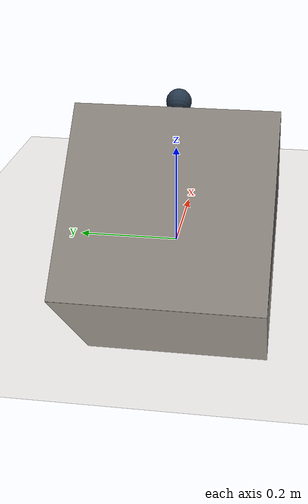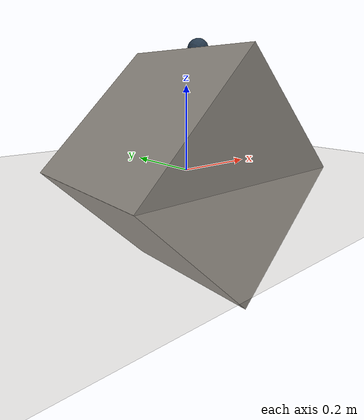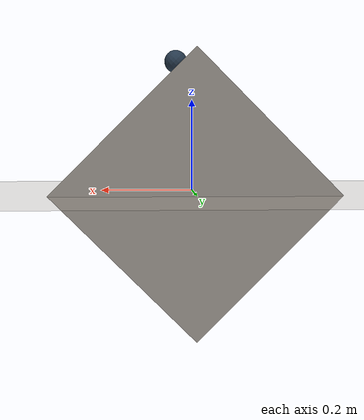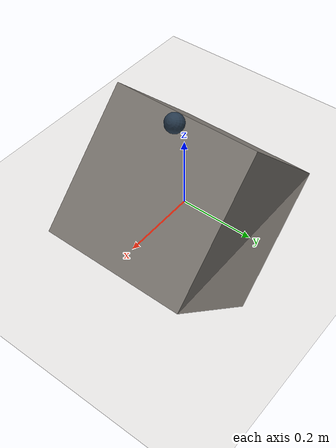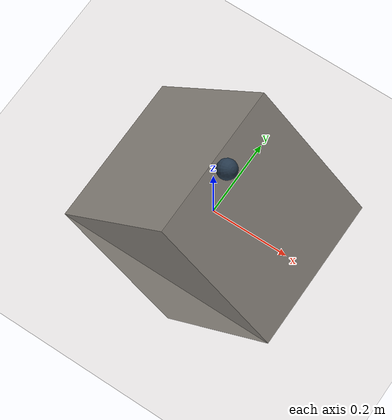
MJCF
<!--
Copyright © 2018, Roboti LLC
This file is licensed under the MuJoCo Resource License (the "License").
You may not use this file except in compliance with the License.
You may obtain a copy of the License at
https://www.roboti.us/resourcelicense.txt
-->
<mujoco model="Ramp">

    <include file="rampscene.xml"/>

    <default>
      <geom friction="0.2 0.0005 0.00001" condim="6"/>
  </default>

    <option solver="CG" tolerance="1e-6"/>

    <size nconmax="500" njmax="5000" nstack="5000000"/>

    <worldbody>
        <!-- z = 0.2*sqrt(2) + 0.025; z = height of ramp + radius of sphere-->
        <body pos="0.03535533905932738 0 0.28284271247461906" quat="0.9238795325112867 0 0.3826834323650898 0">
            <freejoint/>
            <!-- quat = "cos(π/8) sin(π/8) 0 0". This corresponds to a 45 degree
                rotation about vecotor [1, 0, 0] (i.e. x-axis) to create a 45 degree ramp-->
            <geom name="sphereg" type="sphere" size=".025" material="matobj"/>
            <site name="spheres" type="sphere" size=".025" rgba="0 255 0 .2"/>
        </body>
    </worldbody>

    <sensor>
        <framelinvel name="gvel" objtype="geom" objname="sphereg"/>
    </sensor>
</mujoco>

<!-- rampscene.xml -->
<mujoco>
    <compiler meshdir="mesh/" texturedir="texture/"/>

    <statistic extent="2" meansize=".05"/>

    <option timestep="0.005" solver="Newton" iterations="30" tolerance="1e-10" jacobian="sparse" cone="pyramidal"/>

    <visual>
        <rgba haze="0.15 0.25 0.35 1"/>
        <quality shadowsize="2048"/>
        <map stiffness="700" shadowscale="0.5" fogstart="10" fogend="15" zfar="40" haze="0.3"/>
    </visual>

    <asset>
        <texture type="skybox" builtin="gradient" rgb1="0.3 0.5 0.7" rgb2="0 0 0" width="512" height="512"/>
        <texture name="texobj" type="cube" builtin="checker" rgb1=".2 .3 .4" rgb2=".1 0.15 0.2"
            width="512" height="512" mark="cross" markrgb=".8 .8 .8"/>
        <texture name="texplane" type="2d" file="Oak.png"/>
        <texture name="texmarble" type="cube" file="Marble.png"/>

        <material name="matplane" reflectance="0.3" texture="texplane" texrepeat="1 1" texuniform="true"/>
        <material name="matobj" reflectance="0.3" texture="texobj" texrepeat="1 1" texuniform="true"/>
        <material name="matmarble" texture="texmarble" rgba=".7 .7 .7 1"/>
    </asset>

    <worldbody>
        <light directional="true" diffuse=".4 .4 .4" specular="0.1 0.1 0.1" pos="0 0 5.0" dir="0 0 -1" castshadow="false"/>
        <light directional="true" diffuse=".6 .6 .6" specular="0.2 0.2 0.2" pos="0 0 4" dir="0 0 -1"/>
        <geom name="ground" type="plane" size="0 0 1" pos="0 0 0" material="matplane" condim="3"/>
        <!-- quat = "cos(π/8) sin(π/8) 0 0". This corresponds to a 45 degree
            rotation about vecotor [1, 0, 0] (i.e. x-axis) to create a 45 degree ramp-->
        <geom type="box" size=".2 .2 .2" material="matmarble" quat="0.9238795325112867 0 0.3826834323650898 0" group="1" condim="3" name="ramp45"/>
    </worldbody>

</mujoco>
